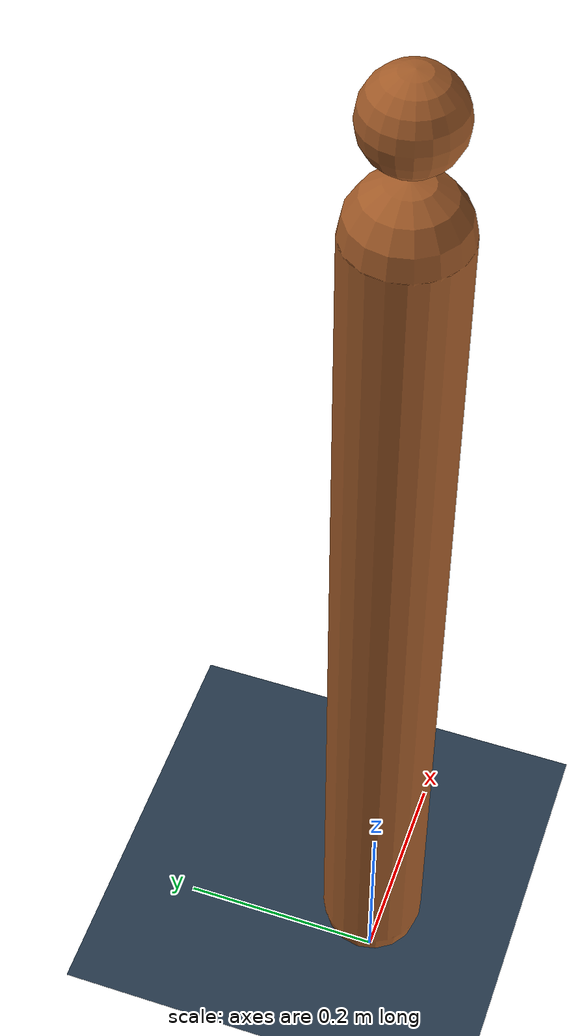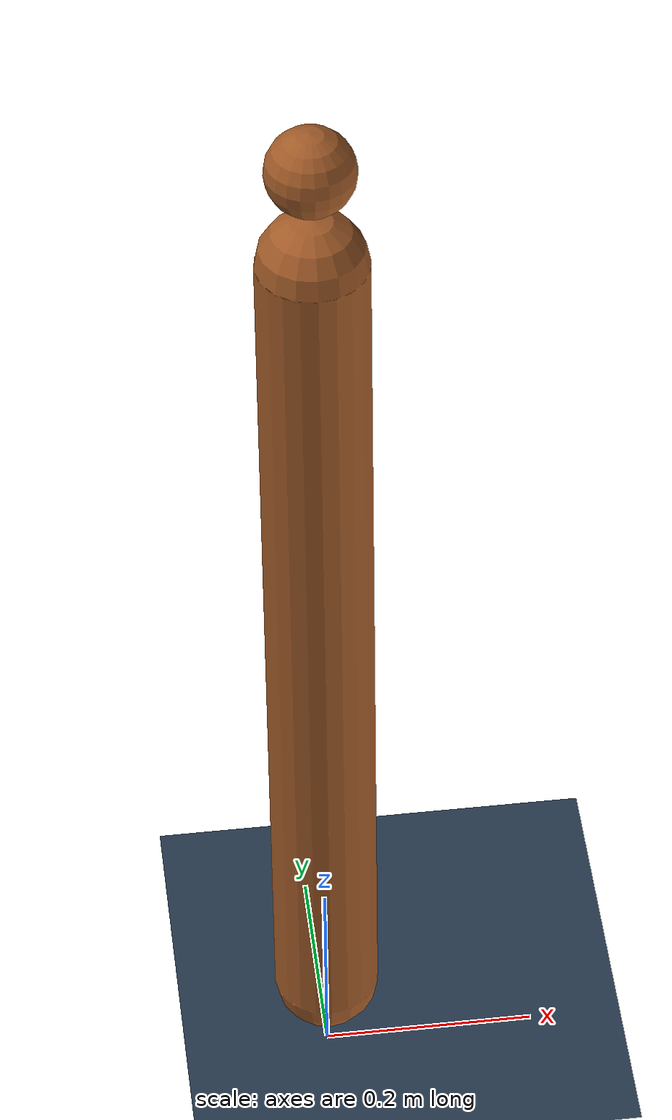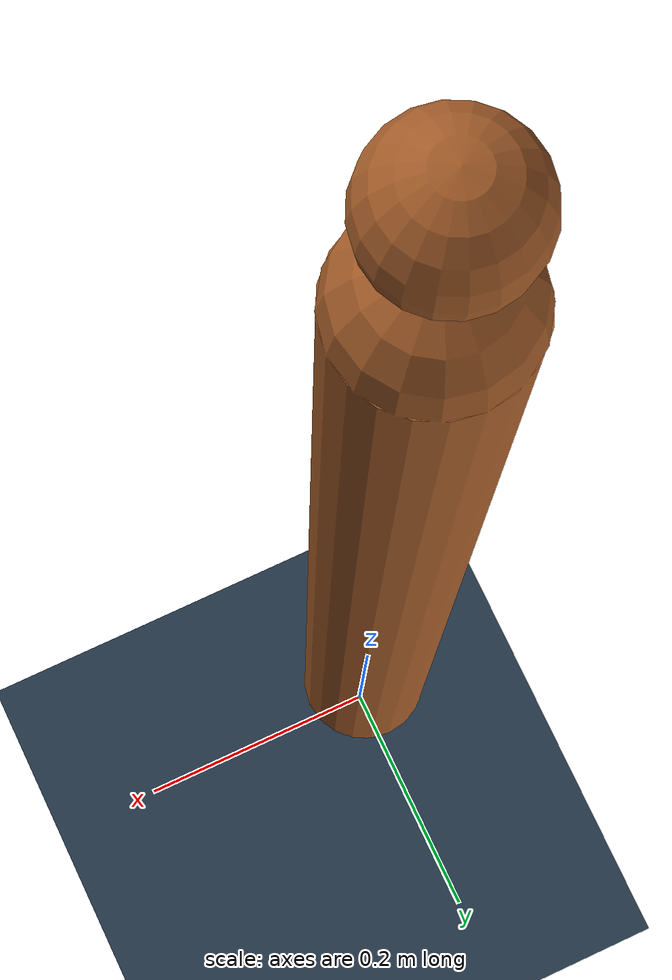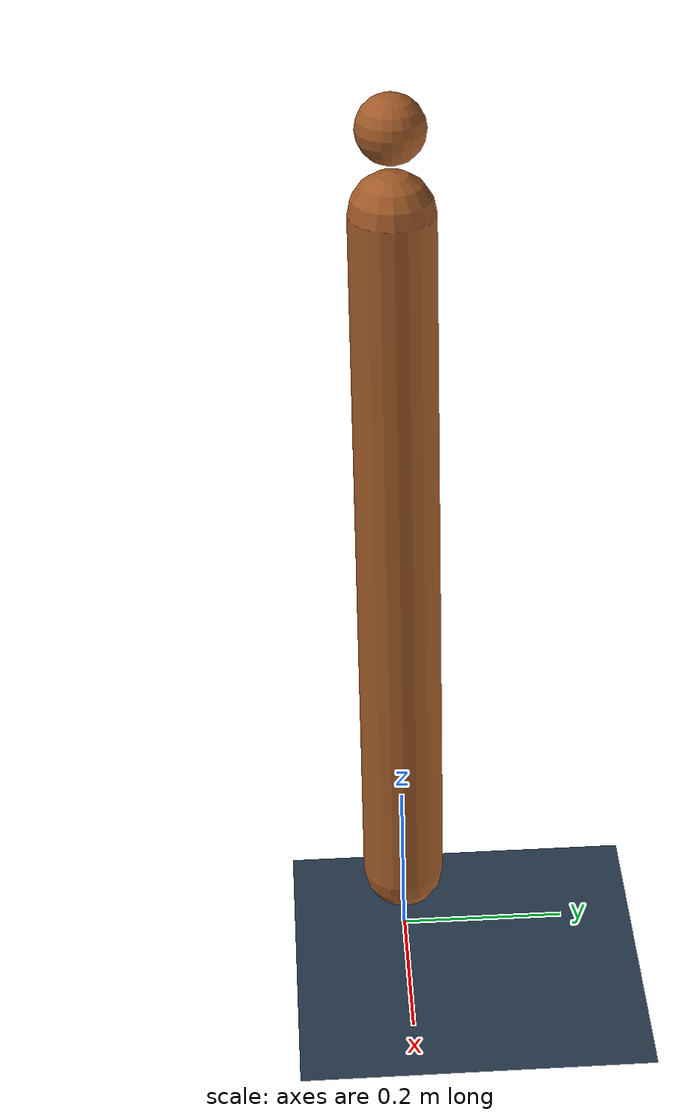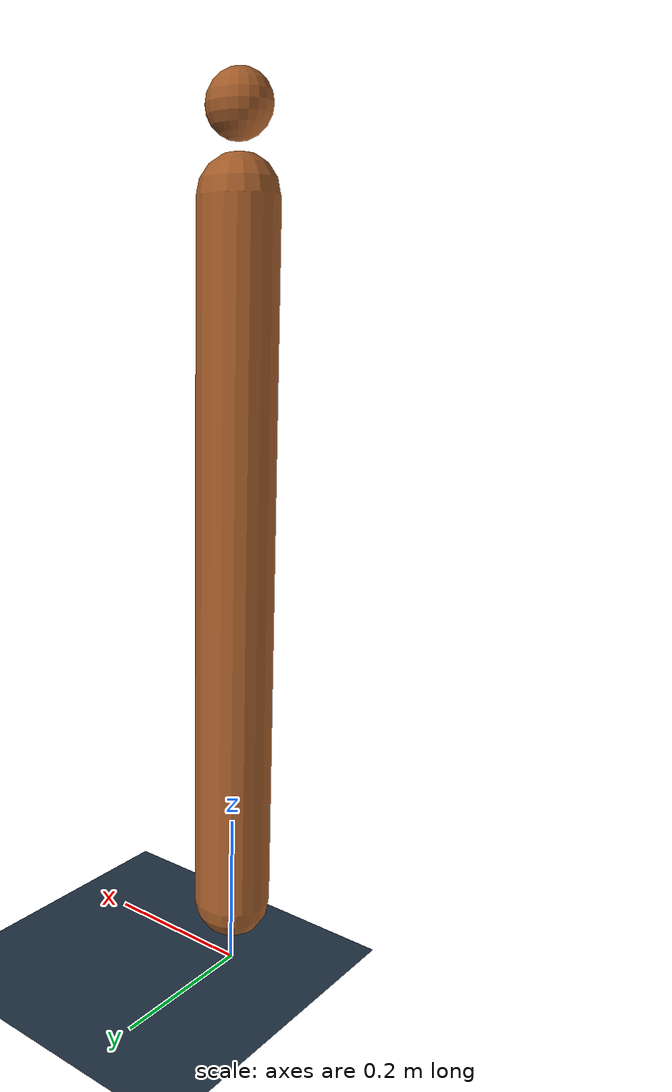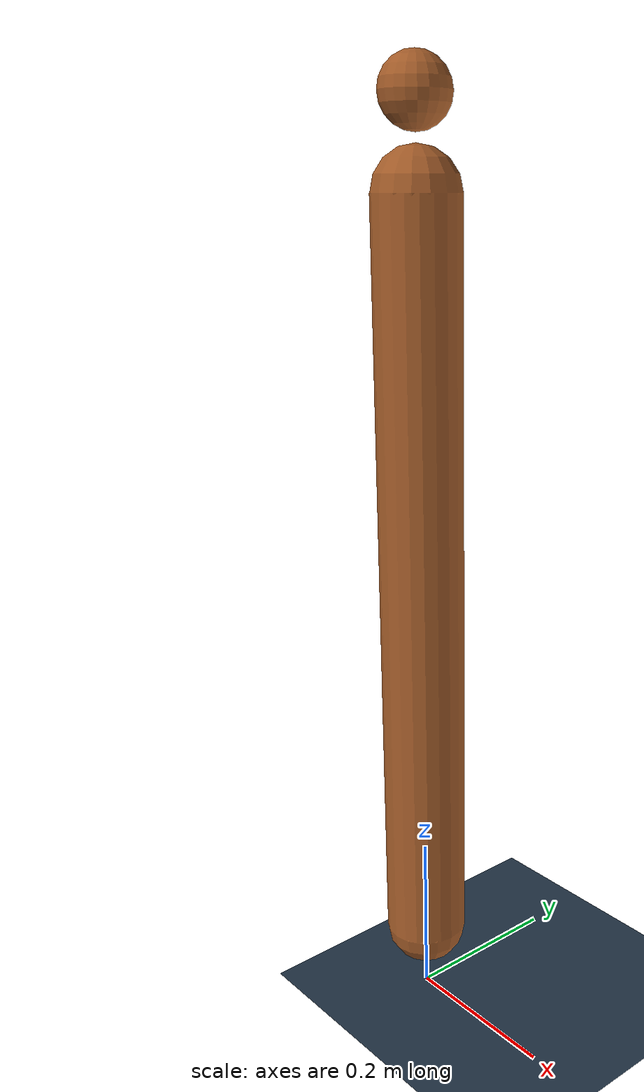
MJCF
<mujoco model="Humanoid">

    <compiler inertiafromgeom="true" angle="degree"/>

    <default>
        <motor ctrlrange="-1 1" ctrllimited="true"/>
        <joint limited="true" damping="1" armature="0"/>
        <geom condim="1" material="matgeom"/>
    </default>

    <option timestep="0.02" />

    <visual>
        <map force="0.1" zfar="30"/>
        <rgba haze="0.15 0.25 0.35 1"/>
        <quality shadowsize="2048"/>
        <global offwidth="800" offheight="800"/>
    </visual>

    <asset>
        <texture type="skybox" builtin="gradient" rgb1="0.3 0.5 0.7" rgb2="0 0 0" width="512" height="512"/>
        <texture name="texplane" type="2d" builtin="checker"
            rgb1=".2 .3 .4" rgb2=".1 0.15 0.2"
            width="512" height="512" mark="cross" markrgb=".8 .8 .8"/>
        <texture name="texgeom" type="cube" builtin="flat" mark="cross" width="127" height="1278"
            rgb1="0.8 0.6 0.4" rgb2="0.8 0.6 0.4" markrgb="1 1 1" random="0.01"/>
        <material name="matplane" reflectance="0.3" texture="texplane" texrepeat="1 1" texuniform="true"/>
        <material name="matgeom" texture="texgeom" texuniform="true" rgba="0.8 0.6 .4 1"/>
    </asset>

    <worldbody>

        <camera name="fixed" pos="4 -4 5" euler="35 45 45"/>
        <geom name="floor" pos="0 0 0" size="0 0 .25" type="plane" material="matplane" condim="3"/>
        <light directional="false" diffuse=".2 .2 .2"
            specular="0 0 0" pos="0 0 5" dir="0 0 -1" castshadow="false"/>
        <light directional="false" diffuse=".8 .8 .8" mode="targetbodycom" target="torso"
            specular="0.3 0.3 0.3" pos="0 0 4.0" dir="0 0 -1"/>

        <body name="torso" pos="0 0 0.04" euler="0.0 0.0 0.0" >
            <body name="bong0" pos="0 0 0" >
                <body name="bong1" pos="0 0 0.05" >
                    <geom name="bong1" type="capsule" fromto="0 0 0 0 0 0.9" size="0.05" />
                    <joint name="bong1_x" type="hinge" pos="0 0 0" axis="1 0 0" range="-20 20" damping="1" stiffness="5" armature="0.02" />
                    <joint name="bong1_y" type="hinge" pos="0 0 0" axis="0 1 0" range="-20 20" damping="1" stiffness="5" armature="0.02" />
                    <body name="bong2" pos="0 0 1" >
                        <site name="aaaaa" pos="0 0 0" size=".01" zaxis="0 0 0.01"/>
                        <geom name="bong2" type="sphere" size="0.04" />
                    </body>
                </body>
            </body>
        </body>

    </worldbody>

    <actuator>
       <position ctrllimited="true" kp="130" ctrlrange="-0.2 0.2" joint="bong1_x" name="bong1_x"/>
       <position ctrllimited="true" kp="130" ctrlrange="-0.2 0.2" joint="bong1_y" name="bong1_y"/>

    </actuator>

</mujoco>
